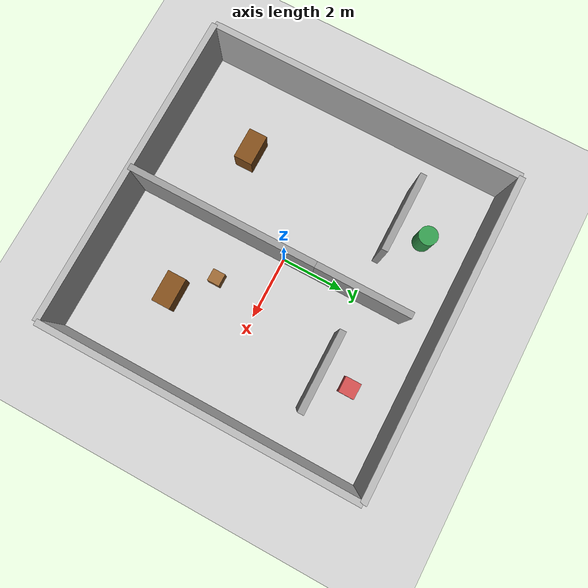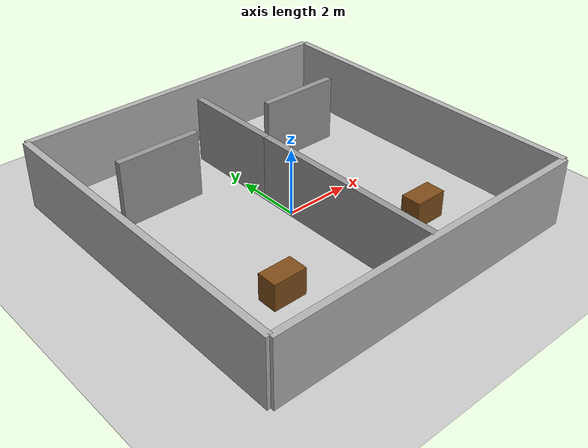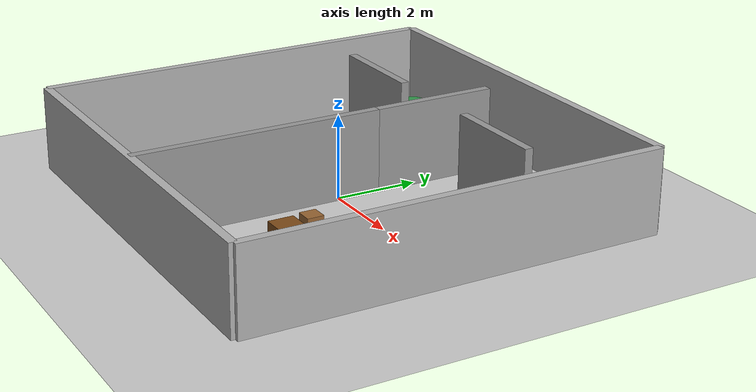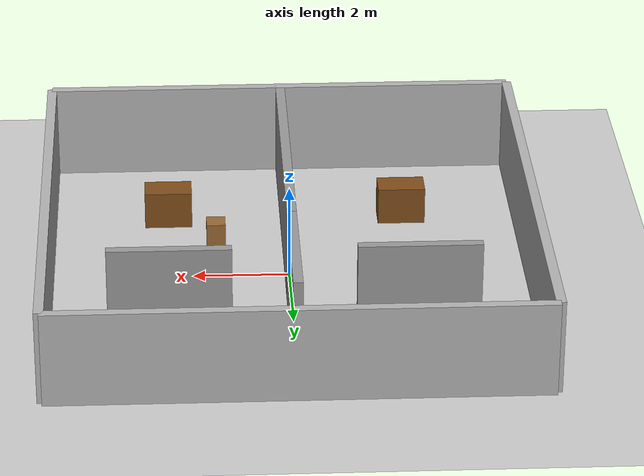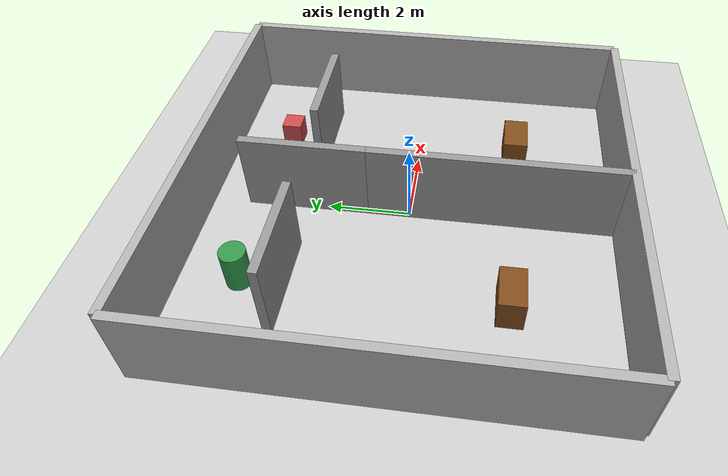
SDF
<?xml version="1.0" ?>
<sdf version="1.8">
  <world name="house_world">

    <!-- Physics with ODE (compatible with ODE friction syntax) -->
    <physics name="1ms" type="ode">
      <max_step_size>0.001</max_step_size>
      <real_time_factor>1.0</real_time_factor>
      <real_time_update_rate>1000</real_time_update_rate>
      <ode>
        <solver>
          <type>quick</type>
          <iters>50</iters>
          <sor>1.3</sor>
        </solver>
        <constraints>
          <cfm>0.0</cfm>
          <erp>0.2</erp>
          <contact_max_correcting_vel>100.0</contact_max_correcting_vel>
          <contact_surface_layer>0.001</contact_surface_layer>
        </constraints>
      </ode>
    </physics>

    <!-- World Plugins -->
    <plugin filename="gz-sim-physics-system" name="gz::sim::systems::Physics"></plugin>
    <plugin filename="gz-sim-user-commands-system" name="gz::sim::systems::UserCommands"></plugin>
    <plugin filename="gz-sim-scene-broadcaster-system" name="gz::sim::systems::SceneBroadcaster"></plugin>
    <plugin filename="gz-sim-sensors-system" name="gz::sim::systems::Sensors">
      <render_engine>ogre2</render_engine>
    </plugin>

    <!-- Lighting -->
    <light type="directional" name="sun">
      <cast_shadows>true</cast_shadows>
      <pose>0 0 10 0 0 0</pose>
      <diffuse>1 1 1 1</diffuse>
      <specular>0.5 0.5 0.5 1</specular>
      <attenuation>
        <range>1000</range>
        <constant>0.9</constant>
        <linear>0.01</linear>
        <quadratic>0.001</quadratic>
      </attenuation>
      <direction>-0.5 0.1 -0.9</direction>
    </light>

    <!-- Ground Plane with PROPER Contact for ODE -->
    <model name="ground_plane">
      <static>true</static>
      <link name="link">
        <collision name="collision">
          <geometry>
            <plane>
              <normal>0 0 1</normal>
              <size>100 100</size>
            </plane>
          </geometry>
          <surface>
            <friction>
              <ode>
                <mu>1.0</mu>
                <mu2>1.0</mu2>
              </ode>
            </friction>
            <contact>
              <ode>
                <kp>1000000000.0</kp>
                <kd>100.0</kd>
                <max_vel>0.1</max_vel>
                <min_depth>0.00001</min_depth>
              </ode>
            </contact>
          </surface>
        </collision>
        <visual name="visual">
          <geometry>
            <plane>
              <normal>0 0 1</normal>
              <size>100 100</size>
            </plane>
          </geometry>
          <material>
            <ambient>0.8 0.8 0.8 1</ambient>
            <diffuse>0.8 0.8 0.8 1</diffuse>
            <specular>0.8 0.8 0.8 1</specular>
          </material>
        </visual>
      </link>
    </model>

    <!-- Outer Walls -->
    <model name="wall_north">
      <static>true</static>
      <link name="link">
        <pose>0 5 1 0 0 0</pose>
        <collision name="collision">
          <geometry>
            <box><size>10 0.2 2</size></box>
          </geometry>
        </collision>
        <visual name="visual">
          <geometry>
            <box><size>10 0.2 2</size></box>
          </geometry>
          <material>
            <ambient>0.7 0.7 0.7 1</ambient>
            <diffuse>0.7 0.7 0.7 1</diffuse>
          </material>
        </visual>
      </link>
    </model>

    <model name="wall_south">
      <static>true</static>
      <link name="link">
        <pose>0 -5 1 0 0 0</pose>
        <collision name="collision">
          <geometry>
            <box><size>10 0.2 2</size></box>
          </geometry>
        </collision>
        <visual name="visual">
          <geometry>
            <box><size>10 0.2 2</size></box>
          </geometry>
          <material>
            <ambient>0.7 0.7 0.7 1</ambient>
            <diffuse>0.7 0.7 0.7 1</diffuse>
          </material>
        </visual>
      </link>
    </model>

    <model name="wall_east">
      <static>true</static>
      <link name="link">
        <pose>5 0 1 0 0 0</pose>
        <collision name="collision">
          <geometry>
            <box><size>0.2 10 2</size></box>
          </geometry>
        </collision>
        <visual name="visual">
          <geometry>
            <box><size>0.2 10 2</size></box>
          </geometry>
          <material>
            <ambient>0.7 0.7 0.7 1</ambient>
            <diffuse>0.7 0.7 0.7 1</diffuse>
          </material>
        </visual>
      </link>
    </model>

    <model name="wall_west">
      <static>true</static>
      <link name="link">
        <pose>-5 0 1 0 0 0</pose>
        <collision name="collision">
          <geometry>
            <box><size>0.2 10 2</size></box>
          </geometry>
        </collision>
        <visual name="visual">
          <geometry>
            <box><size>0.2 10 2</size></box>
          </geometry>
          <material>
            <ambient>0.7 0.7 0.7 1</ambient>
            <diffuse>0.7 0.7 0.7 1</diffuse>
          </material>
        </visual>
      </link>
    </model>

    <!-- Interior Walls (creates 3 rooms with doorways) -->
    <model name="interior_wall_1_bottom">
      <static>true</static>
      <link name="link">
        <pose>0 -2 1 0 0 0</pose>
        <collision name="collision">
          <geometry>
            <box><size>0.2 6 2</size></box>
          </geometry>
        </collision>
        <visual name="visual">
          <geometry>
            <box><size>0.2 6 2</size></box>
          </geometry>
          <material>
            <ambient>0.6 0.6 0.6 1</ambient>
            <diffuse>0.6 0.6 0.6 1</diffuse>
          </material>
        </visual>
      </link>
    </model>

    <model name="interior_wall_1_top">
      <static>true</static>
      <link name="link">
        <pose>0 2.5 1 0 0 0</pose>
        <collision name="collision">
          <geometry>
            <box><size>0.2 3 2</size></box>
          </geometry>
        </collision>
        <visual name="visual">
          <geometry>
            <box><size>0.2 3 2</size></box>
          </geometry>
          <material>
            <ambient>0.6 0.6 0.6 1</ambient>
            <diffuse>0.6 0.6 0.6 1</diffuse>
          </material>
        </visual>
      </link>
    </model>

    <model name="interior_wall_2_left">
      <static>true</static>
      <link name="link">
        <pose>-2.5 2.5 1 0 0 1.5708</pose>
        <collision name="collision">
          <geometry>
            <box><size>0.2 2.5 2</size></box>
          </geometry>
        </collision>
        <visual name="visual">
          <geometry>
            <box><size>0.2 2.5 2</size></box>
          </geometry>
          <material>
            <ambient>0.6 0.6 0.6 1</ambient>
            <diffuse>0.6 0.6 0.6 1</diffuse>
          </material>
        </visual>
      </link>
    </model>

    <model name="interior_wall_2_right">
      <static>true</static>
      <link name="link">
        <pose>2.5 2.5 1 0 0 1.5708</pose>
        <collision name="collision">
          <geometry>
            <box><size>0.2 2.5 2</size></box>
          </geometry>
        </collision>
        <visual name="visual">
          <geometry>
            <box><size>0.2 2.5 2</size></box>
          </geometry>
          <material>
            <ambient>0.6 0.6 0.6 1</ambient>
            <diffuse>0.6 0.6 0.6 1</diffuse>
          </material>
        </visual>
      </link>
    </model>

    <!-- Obstacles - Tables -->
    <model name="table_1">
      <static>true</static>
      <link name="link">
        <pose>-2.5 -2.5 0.4 0 0 0</pose>
        <collision name="collision">
          <geometry>
            <box><size>1.0 0.6 0.8</size></box>
          </geometry>
        </collision>
        <visual name="visual">
          <geometry>
            <box><size>1.0 0.6 0.8</size></box>
          </geometry>
          <material>
            <ambient>0.5 0.3 0.1 1</ambient>
            <diffuse>0.5 0.3 0.1 1</diffuse>
          </material>
        </visual>
      </link>
    </model>

    <model name="table_2">
      <static>true</static>
      <link name="link">
        <pose>2.5 -2.5 0.4 0 0 0</pose>
        <collision name="collision">
          <geometry>
            <box><size>1.0 0.6 0.8</size></box>
          </geometry>
        </collision>
        <visual name="visual">
          <geometry>
            <box><size>1.0 0.6 0.8</size></box>
          </geometry>
          <material>
            <ambient>0.5 0.3 0.1 1</ambient>
            <diffuse>0.5 0.3 0.1 1</diffuse>
          </material>
        </visual>
      </link>
    </model>

    <model name="cylinder_obstacle">
      <static>true</static>
      <link name="link">
        <pose>-2.5 3.5 0.5 0 0 0</pose>
        <collision name="collision">
          <geometry>
            <cylinder><radius>0.3</radius><length>1.0</length></cylinder>
          </geometry>
        </collision>
        <visual name="visual">
          <geometry>
            <cylinder><radius>0.3</radius><length>1.0</length></cylinder>
          </geometry>
          <material>
            <ambient>0.2 0.6 0.3 1</ambient>
            <diffuse>0.2 0.6 0.3 1</diffuse>
          </material>
        </visual>
      </link>
    </model>

    <model name="box_obstacle">
      <static>true</static>
      <link name="link">
        <pose>2.5 3.5 0.3 0 0 0</pose>
        <collision name="collision">
          <geometry>
            <box><size>0.5 0.5 0.6</size></box>
          </geometry>
        </collision>
        <visual name="visual">
          <geometry>
            <box><size>0.5 0.5 0.6</size></box>
          </geometry>
          <material>
            <ambient>0.8 0.3 0.3 1</ambient>
            <diffuse>0.8 0.3 0.3 1</diffuse>
          </material>
        </visual>
      </link>
    </model>

    <model name="obstacle_1">
      <static>true</static>
      <link name="link">
        <pose>1.5 -1.5 0.25 0 0 0</pose>
        <collision name="collision">
          <geometry>
            <box><size>0.4 0.4 0.5</size></box>
          </geometry>
        </collision>
        <visual name="visual">
          <geometry>
            <box><size>0.4 0.4 0.5</size></box>
          </geometry>
          <material>
            <ambient>0.6 0.4 0.2 1</ambient>
            <diffuse>0.6 0.4 0.2 1</diffuse>
          </material>
        </visual>
      </link>
    </model>

  </world>
</sdf>
